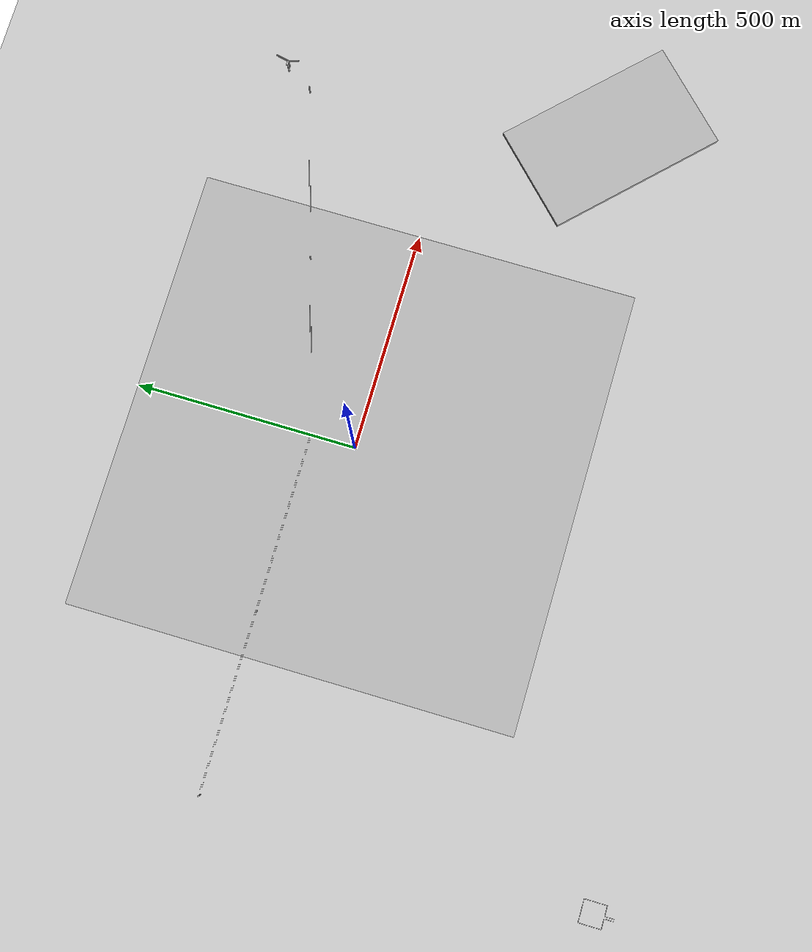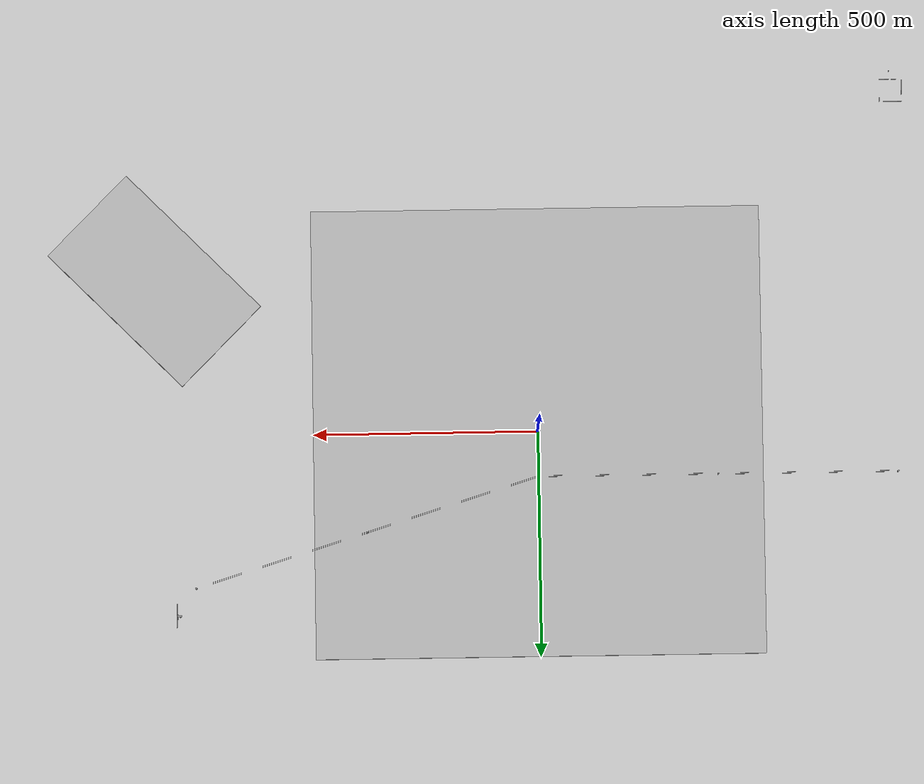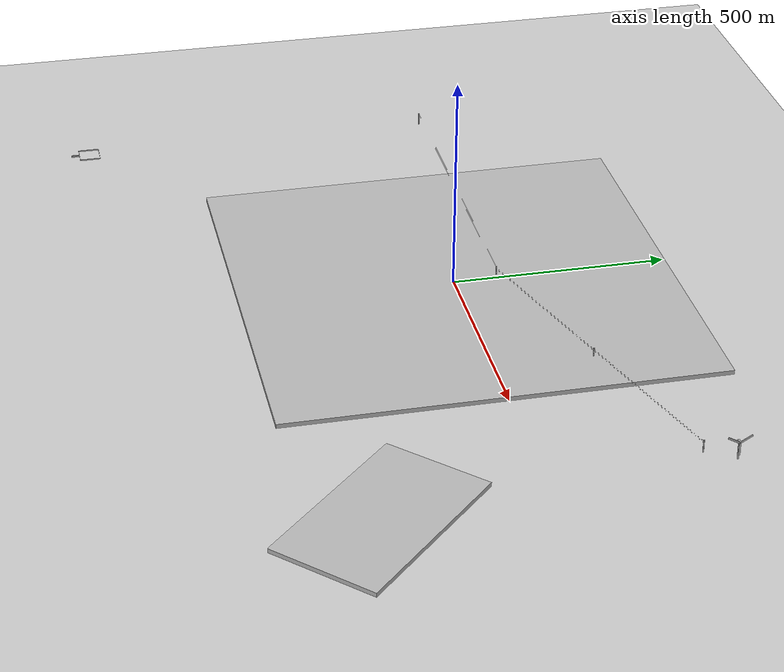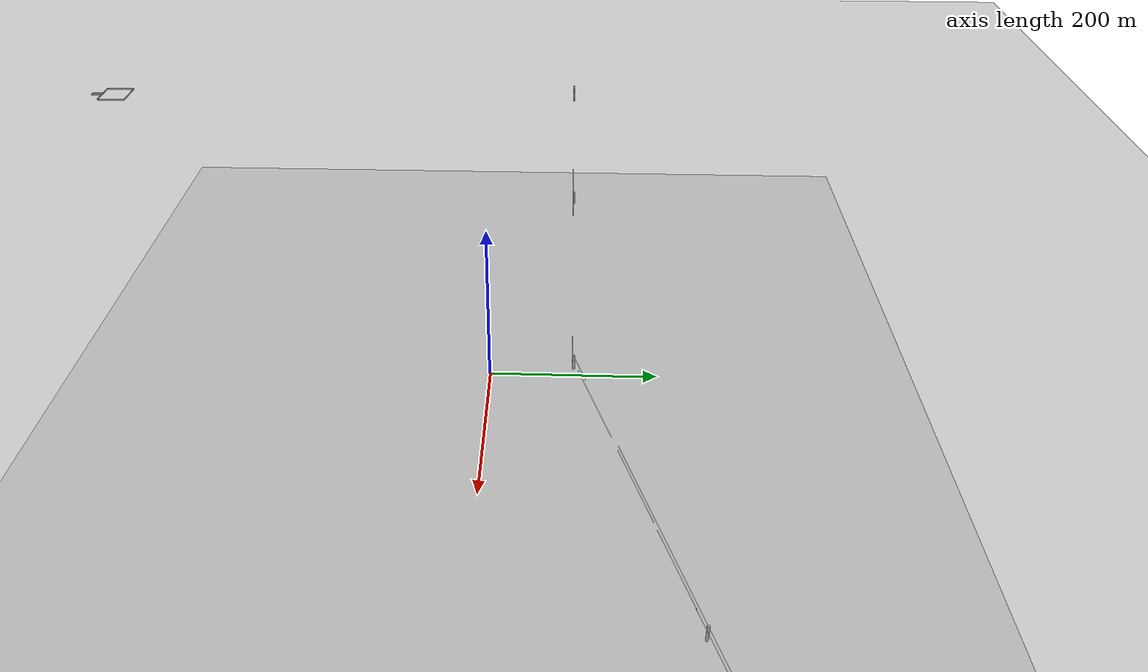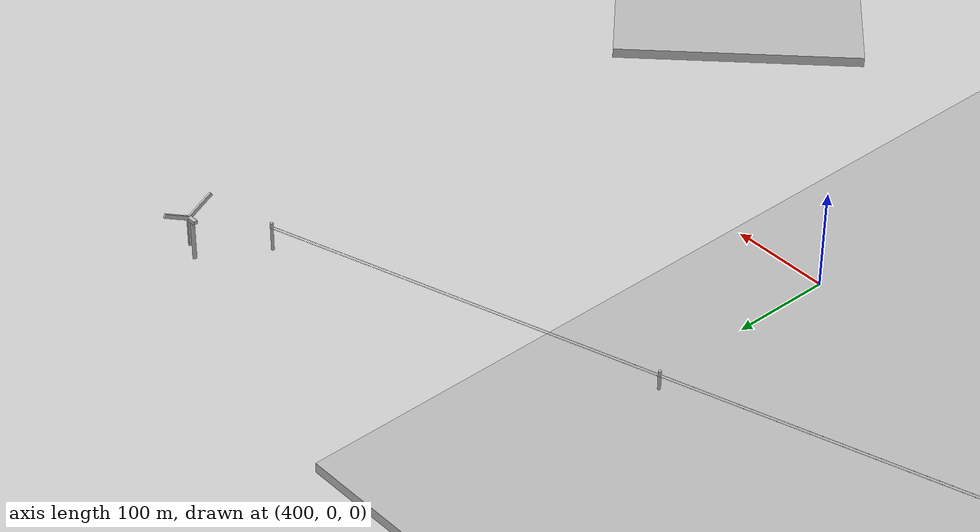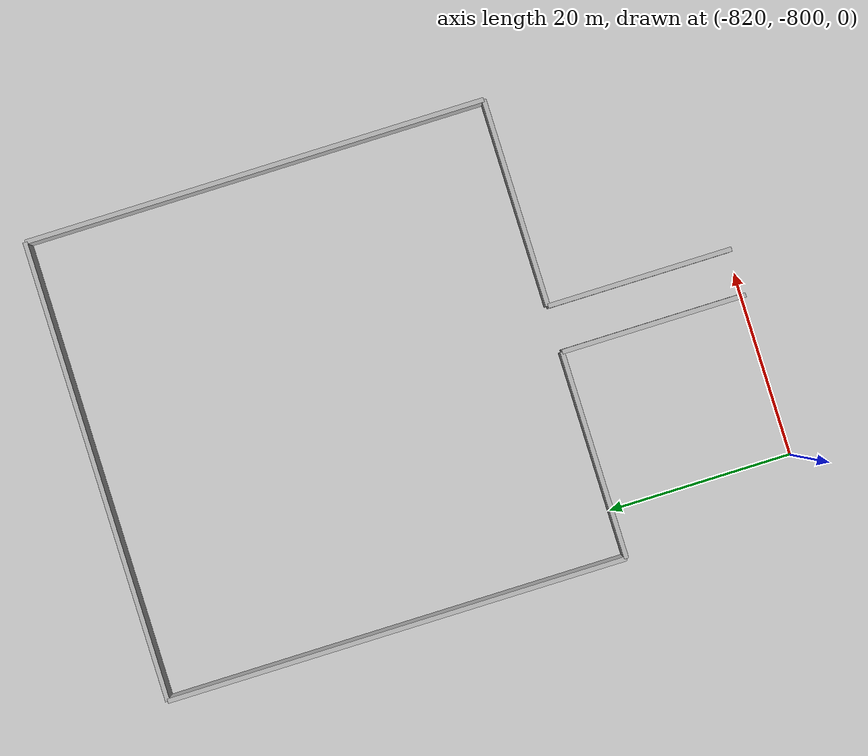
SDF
<sdf version="1.6">
 <world name="default">
  <physics name="default_physics" default="0" type="ode">
   <max_step_size>0.002</max_step_size>
   <real_time_update_rate>500</real_time_update_rate>
   <real_time_factor>1</real_time_factor>
  </physics>
  <light name="sun" type="directional">
   <pose>0 0 10 0 -0 0</pose>
   <diffuse>0.8 0.8 0.8 1</diffuse>
   <specular>0.1 0.1 0.1 1</specular>
   <attenuation>
    <range>1000</range>
    <constant>0.9</constant>
    <linear>0.01</linear>
    <quadratic>0.001</quadratic>
   </attenuation>
   <direction>-0.5 0.5 -1</direction>
  </light>
  <model name="ground_plane">
   <static>1</static>
   <link name="link">
    <collision name="collision">
     <geometry><plane><normal>0 0 1</normal><size>100 100</size></plane></geometry>
     <surface><friction><ode><mu>100</mu><mu2>50</mu2></ode></friction></surface>
    </collision>
    <visual name="visual">
     <cast_shadows>0</cast_shadows>
     <geometry><plane><normal>0 0 1</normal><size>100 100</size></plane></geometry>
     <material>
      <script><uri>file://media/materials/scripts/gazebo.material</uri><name>Gazebo/Grey</name></script>
     </material>
    </visual>
   </link>
  </model>
  <gravity>0 0 -9.8</gravity>
  <magnetic_field>6e-06 2.3e-05 -4.2e-05</magnetic_field>
  <atmosphere type="adiabatic"/>
  <scene><ambient>0.4 0.4 0.4 1</ambient><background>0.7 0.7 0.7 1</background><shadows>1</shadows></scene>
  <spherical_coordinates>
   <surface_model>EARTH_WGS84</surface_model>
   <latitude_deg>0</latitude_deg>
   <longitude_deg>0</longitude_deg>
   <elevation>0</elevation>
   <heading_deg>0</heading_deg>
  </spherical_coordinates>
  <model name="for_L_obs_0_0_0">
   <static>1</static>
   <link name="link">
    <collision name="collision"><geometry><box><size>1000 1000 10</size></box></geometry></collision>
    <visual name="visual"><geometry><box><size>1000 1000 10</size></box></geometry></visual>
   </link>
   <pose>0 0 5 0 -0 0</pose>
  </model>
  <model name="PL1_base1_obs_0_0_0">
   <static>1</static>
   <link name="link">
    <collision name="collision">
     <geometry><cylinder><radius>1.5</radius><length>30</length></cylinder></geometry>
    </collision>
    <visual name="visual">
     <geometry><cylinder><radius>1.5</radius><length>30</length></cylinder></geometry>
    </visual>
   </link>
   <pose>-800 100 15 0 -0 0</pose>
  </model>
  <model name="PL1_wir1_obs_0">
   <static>1</static>
   <link name="link">
    <collision name="collision">
     <geometry><cylinder><radius>0.15</radius><length>400</length></cylinder></geometry>
    </collision>
    <visual name="visual">
     <geometry><cylinder><radius>0.15</radius><length>400</length></cylinder></geometry>
    </visual>
   </link>
   <pose>-600 101.5 25 3.14159 1.57079 3.14159</pose>
  </model>
  <model name="PL1_wir1_obs_1">
   <static>1</static>
   <link name="link">
    <collision name="collision">
     <geometry><cylinder><radius>0.15</radius><length>400</length></cylinder></geometry>
    </collision>
    <visual name="visual">
     <geometry><cylinder><radius>0.15</radius><length>400</length></cylinder></geometry>
    </visual>
   </link>
   <pose>-600 98.5 25 3.14159 1.57079 3.14159</pose>
  </model>
  <model name="PL1_base2_obs_0_0_0">
   <static>1</static>
   <link name="link">
    <collision name="collision">
     <geometry><cylinder><radius>1.5</radius><length>30</length></cylinder></geometry>
    </collision>
    <visual name="visual">
     <geometry><cylinder><radius>1.5</radius><length>30</length></cylinder></geometry>
    </visual>
   </link>
   <pose>-400 100 15 0 -0 0</pose>
  </model>
  <model name="PL1_wir2_obs_0">
   <static>1</static>
   <link name="link">
    <collision name="collision">
     <geometry><cylinder><radius>0.15</radius><length>400</length></cylinder></geometry>
    </collision>
    <visual name="visual">
     <geometry><cylinder><radius>0.15</radius><length>400</length></cylinder></geometry>
    </visual>
   </link>
   <pose>-200 101.5 25 3.14159 1.57079 3.14159</pose>
  </model>
  <model name="PL1_wir2_obs_1">
   <static>1</static>
   <link name="link">
    <collision name="collision">
     <geometry><cylinder><radius>0.15</radius><length>400</length></cylinder></geometry>
    </collision>
    <visual name="visual">
     <geometry><cylinder><radius>0.15</radius><length>400</length></cylinder></geometry>
    </visual>
   </link>
   <pose>-200 98.5 25 3.14159 1.57079 3.14159</pose>
  </model>
  <model name="PL2_base3_obs_0_0_0">
   <static>1</static>
   <link name="link">
    <collision name="collision">
     <geometry><cylinder><radius>1.5</radius><length>30</length></cylinder></geometry>
    </collision>
    <visual name="visual">
     <geometry><cylinder><radius>1.5</radius><length>30</length></cylinder></geometry>
    </visual>
   </link>
   <pose>0 100 15 0 -0 0.302885</pose>
  </model>
  <model name="PL2_wir3_obs_0">
   <static>1</static>
   <link name="link">
    <collision name="collision">
     <geometry><cylinder><radius>0.15</radius><length>400</length></cylinder></geometry>
    </collision>
    <visual name="visual">
     <geometry><cylinder><radius>0.15</radius><length>400</length></cylinder></geometry>
    </visual>
   </link>
   <pose>190.449 161.087 25 3.14159 1.57079 -2.83871</pose>
  </model>
  <model name="PL2_wir3_obs_1">
   <static>1</static>
   <link name="link">
    <collision name="collision">
     <geometry><cylinder><radius>0.15</radius><length>400</length></cylinder></geometry>
    </collision>
    <visual name="visual">
     <geometry><cylinder><radius>0.15</radius><length>400</length></cylinder></geometry>
    </visual>
   </link>
   <pose>191.343 158.223 25 3.14159 1.57079 -2.83871</pose>
  </model>
  <model name="PL2_base4_obs_0_0_0">
   <static>1</static>
   <link name="link">
    <collision name="collision">
     <geometry><cylinder><radius>1.5</radius><length>30</length></cylinder></geometry>
    </collision>
    <visual name="visual">
     <geometry><cylinder><radius>1.5</radius><length>30</length></cylinder></geometry>
    </visual>
   </link>
   <pose>381.792 219.31 15 0 -0 0.302885</pose>
  </model>
  <model name="PL2_wir4_obs_0">
   <static>1</static>
   <link name="link">
    <collision name="collision">
     <geometry><cylinder><radius>0.15</radius><length>400</length></cylinder></geometry>
    </collision>
    <visual name="visual">
     <geometry><cylinder><radius>0.15</radius><length>400</length></cylinder></geometry>
    </visual>
   </link>
   <pose>572.241 280.397 25 3.14159 1.57079 -2.83871</pose>
  </model>
  <model name="PL2_wir4_obs_1">
   <static>1</static>
   <link name="link">
    <collision name="collision">
     <geometry><cylinder><radius>0.15</radius><length>400</length></cylinder></geometry>
    </collision>
    <visual name="visual">
     <geometry><cylinder><radius>0.15</radius><length>400</length></cylinder></geometry>
    </visual>
   </link>
   <pose>573.135 277.533 25 3.14159 1.57079 -2.83871</pose>
  </model>
  <model name="PL2_base5_obs_0_0_0">
   <static>1</static>
   <link name="link">
    <collision name="collision">
     <geometry><cylinder><radius>1.5</radius><length>30</length></cylinder></geometry>
    </collision>
    <visual name="visual">
     <geometry><cylinder><radius>1.5</radius><length>30</length></cylinder></geometry>
    </visual>
   </link>
   <pose>763.584 338.62 15 0 -0 0.302885</pose>
  </model>
  <model name="CF_L_obs_0_0_0">
   <static>1</static>
   <link name="link">
    <collision name="collision"><geometry><box><size>420 250 10</size></box></geometry></collision>
    <visual name="visual"><geometry><box><size>420 250 10</size></box></geometry></visual>
   </link>
   <pose>850 -350 5 0 0 -0.785398</pose>
  </model>
  <model name="eve_CL_obs_0_0_0">
   <static>1</static>
   <link name="link">
    <collision name="collision"><geometry><box><size>0.5 20 3</size></box></geometry></collision>
    <visual name="visual"><geometry><box><size>0.5 20 3</size></box></geometry></visual>
   </link>
   <pose>-802.5 -790 1.5 0 -0 0</pose>
  </model>
  <model name="eve_CR_obs_0_0_0">
   <static>1</static>
   <link name="link">
    <collision name="collision"><geometry><box><size>0.5 20 3</size></box></geometry></collision>
    <visual name="visual"><geometry><box><size>0.5 20 3</size></box></geometry></visual>
   </link>
   <pose>-797.5 -790 1.5 0 -0 0</pose>
  </model>
  <model name="eve_W1_obs_0_0_0">
   <static>1</static>
   <link name="link">
    <collision name="collision"><geometry><box><size>0.5 22.5 3</size></box></geometry></collision>
    <visual name="visual"><geometry><box><size>0.5 22.5 3</size></box></geometry></visual>
   </link>
   <pose>-813.75 -780 1.5 0 -0 1.5708</pose>
  </model>
  <model name="eve_W2_obs_0_0_0">
   <static>1</static>
   <link name="link">
    <collision name="collision"><geometry><box><size>0.5 50 3</size></box></geometry></collision>
    <visual name="visual"><geometry><box><size>0.5 50 3</size></box></geometry></visual>
   </link>
   <pose>-825 -755 1.5 0 -0 0</pose>
  </model>
  <model name="eve_W3_obs_0_0_0">
   <static>1</static>
   <link name="link">
    <collision name="collision"><geometry><box><size>0.5 50 3</size></box></geometry></collision>
    <visual name="visual"><geometry><box><size>0.5 50 3</size></box></geometry></visual>
   </link>
   <pose>-800 -730 1.5 0 -0 1.5708</pose>
  </model>
  <model name="eve_W4_obs_0_0_0">
   <static>1</static>
   <link name="link">
    <collision name="collision"><geometry><box><size>0.5 50 3</size></box></geometry></collision>
    <visual name="visual"><geometry><box><size>0.5 50 3</size></box></geometry></visual>
   </link>
   <pose>-775 -755 1.5 0 -0 0</pose>
  </model>
  <model name="eve_W5_obs_0_0_0">
   <static>1</static>
   <link name="link">
    <collision name="collision"><geometry><box><size>0.5 22.5 3</size></box></geometry></collision>
    <visual name="visual"><geometry><box><size>0.5 22.5 3</size></box></geometry></visual>
   </link>
   <pose>-786.25 -780 1.5 0 -0 1.5708</pose>
  </model>
  <model name="AGen_base_obs_0_0_0">
   <static>1</static>
   <link name="link">
    <collision name="collision">
     <geometry><cylinder><radius>2</radius><length>40</length></cylinder></geometry>
    </collision>
    <visual name="visual"><geometry><cylinder><radius>2</radius><length>40</length></cylinder></geometry></visual>
   </link>
   <pose>800 400 20 0 -0 0</pose>
  </model>
  <model name="AGen_mot_obs_0_0_0">
   <static>1</static>
   <link name="link">
    <collision name="collision"><geometry><box><size>4 4 10</size></box></geometry></collision>
    <visual name="visual"><geometry><box><size>4 4 10</size></box></geometry></visual>
   </link>
   <pose>800 400 42.5 0 1.57 0</pose>
  </model>
  <model name="AGen_ax_obs_0_0_0">
   <static>1</static>
   <link name="link">
    <collision name="collision"><geometry><sphere><radius>2</radius></sphere></geometry></collision>
    <visual name="visual"><geometry><sphere><radius>2</radius></sphere></geometry></visual>
   </link>
   <pose>805 400 42.5 0 1.57 0</pose>
  </model>
  <model name="AGen_ax1_obs_0_0_0">
   <static>1</static>
   <link name="link">
    <collision name="collision"><geometry><box><size>2 4 30</size></box></geometry></collision>
    <visual name="visual"><geometry><box><size>2 4 30</size></box></geometry></visual>
   </link>
   <pose>805 400 27.5 0 -0 0</pose>
  </model>
  <model name="AGen_ax2_obs_0_0_0">
   <static>1</static>
   <link name="link">
    <collision name="collision"><geometry><box><size>2 4 30</size></box></geometry></collision>
    <visual name="visual"><geometry><box><size>2 4 30</size></box></geometry></visual>
   </link>
   <pose>805 413 50 2.0944 -0 0</pose>
  </model>
  <model name="AGen_ax3_obs_0_0_0">
   <static>1</static>
   <link name="link">
    <collision name="collision"><geometry><box><size>2 4 30</size></box></geometry></collision>
    <visual name="visual"><geometry><box><size>2 4 30</size></box></geometry></visual>
   </link>
   <pose>805 387 50 -2.0944 0 0</pose>
  </model>
 </world>
</sdf>
